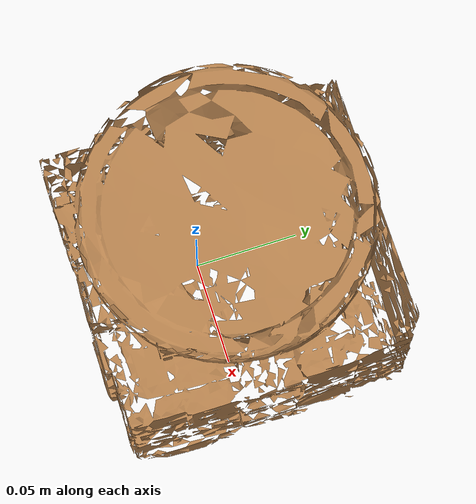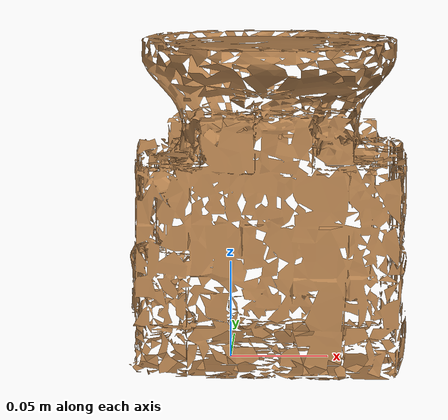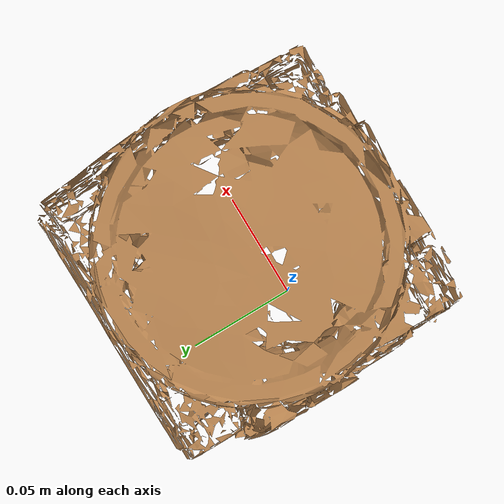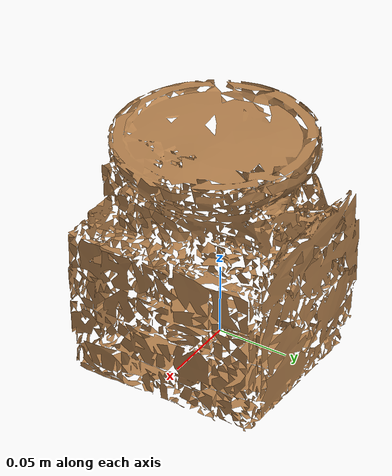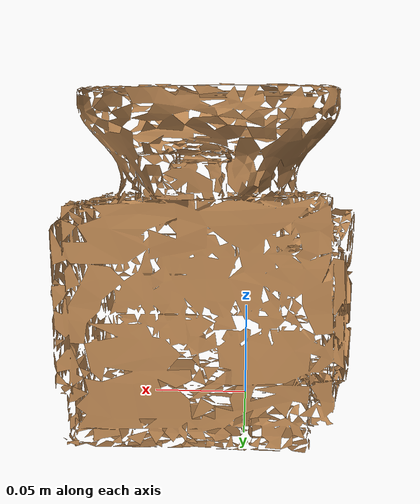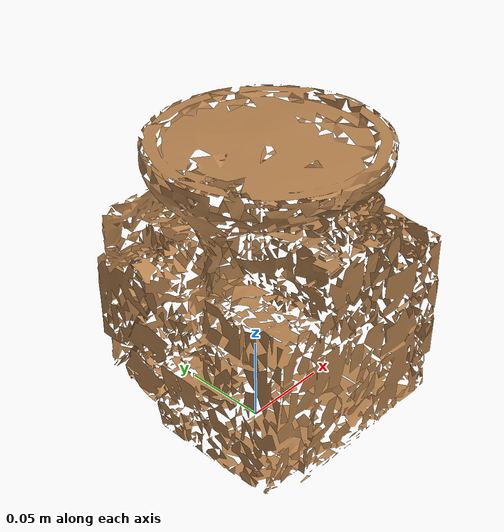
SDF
<?xml version='1.0'?>
<sdf version="1.4">
  <model name="a_colored_wood_blocks">
    <static>false</static>
    <link name="link">
      <inertial>
        <pose>0.02119015620537026 0.008545373467665459 0.07390911070766724 3.1186793689628405 0.03979213980283009 2.836631720245267</pose>
        <mass>0.0023463367230017076</mass>
        <inertia>
          <ixx>7.759890525927938e-06</ixx>
          <ixy>5.061515920705564e-22</ixy>
          <ixz>1.0834387053410328e-22</ixz>
          <iyy>7.470598943639883e-06</iyy>
          <iyz>2.871960641766511e-22</iyz>
          <izz>6.172891559358147e-06</izz>
        </inertia>
      </inertial>
      <collision name="collision">
        <geometry>
          <mesh>
            <!-- Use a downsampled mesh for collisions -->
            <uri>model://070-a_colored_wood_blocks/downsampled.obj</uri>
	        </mesh>
        </geometry>
        <surface>
          <friction>
            <ode>
              <mu>80</mu>
              <mu2>60</mu2>
              <kp>100</kp>
              <kd>100</kd>
            </ode>
          </friction>
        </surface>
      </collision>
      <visual name="visual">
        <geometry>
          <mesh>
            <uri>model://070-a_colored_wood_blocks/google_16k/textured.obj</uri>
	        </mesh>
        </geometry>
        <material>
          <script>
            <uri>model://070-a_colored_wood_blocks/a_colored_wood_blocks.material</uri>
            <name>a_colored_wood_blocks</name>
          </script>
        </material>
      </visual>
    </link>
  </model>
</sdf>
